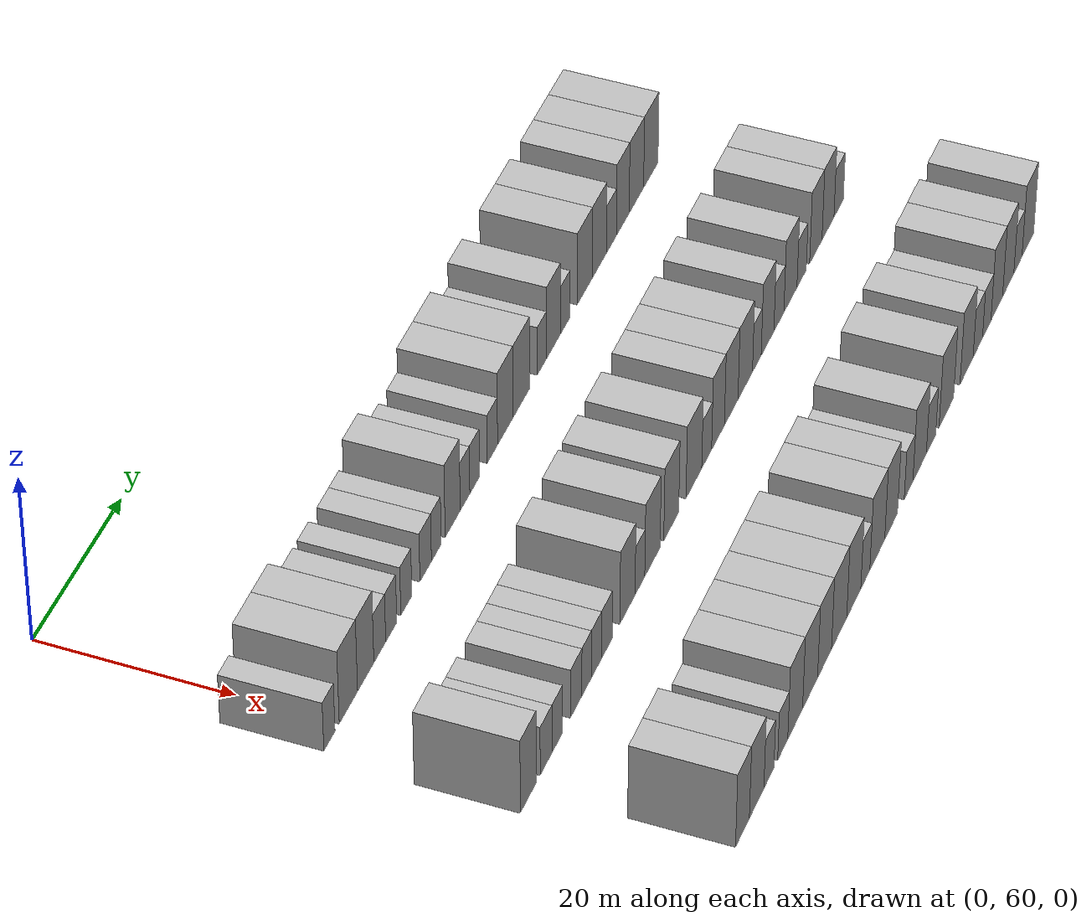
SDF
<sdf version="1.6">
 <world name="default">
  <model name="building_78">
   <static>1</static>
   <pose>25.0000 57.6168 0 0.000000 0.000000 0.000000</pose>
   <link name="link">
    <pose>0 0 3.00 0 0 0</pose>
    <collision name="collision"><geometry><box><size>10.0000 2.6077 6.0000</size></box></geometry></collision>
    <visual name="visual">
     <cast_shadows>0</cast_shadows>
     <geometry><box><size>10.0000 2.6077 6.0000</size></box></geometry>
     <material>
      <script>
       <uri>model://HANNAS_wall/materials/scripts</uri>
       <uri>model://HANNAS_wall/materials/textures</uri>
       <name>vrc/HANNAS_wall</name>
      </script>
     </material>
    </visual>
   </link>
  </model>
  <model name="building_79">
   <static>1</static>
   <pose>25.0000 62.0913 0 0.000000 0.000000 0.000000</pose>
   <link name="link">
    <pose>0 0 4.50 0 0 0</pose>
    <collision name="collision"><geometry><box><size>10.0000 4.3413 9.0000</size></box></geometry></collision>
    <visual name="visual">
     <cast_shadows>0</cast_shadows>
     <geometry><box><size>10.0000 4.3413 9.0000</size></box></geometry>
     <material>
      <script>
       <uri>model://HANNAS_wall/materials/scripts</uri>
       <uri>model://HANNAS_wall/materials/textures</uri>
       <name>vrc/HANNAS_wall</name>
      </script>
     </material>
    </visual>
   </link>
  </model>
  <model name="building_80">
   <static>1</static>
   <pose>25.0000 66.2099 0 0.000000 0.000000 0.000000</pose>
   <link name="link">
    <pose>0 0 4.50 0 0 0</pose>
    <collision name="collision"><geometry><box><size>10.0000 3.8960 9.0000</size></box></geometry></collision>
    <visual name="visual">
     <cast_shadows>0</cast_shadows>
     <geometry><box><size>10.0000 3.8960 9.0000</size></box></geometry>
     <material>
      <script>
       <uri>model://HANNAS_wall/materials/scripts</uri>
       <uri>model://HANNAS_wall/materials/textures</uri>
       <name>vrc/HANNAS_wall</name>
      </script>
     </material>
    </visual>
   </link>
  </model>
  <model name="building_81">
   <static>1</static>
   <pose>25.0000 69.5908 0 0.000000 0.000000 0.000000</pose>
   <link name="link">
    <pose>0 0 3.00 0 0 0</pose>
    <collision name="collision"><geometry><box><size>10.0000 2.8658 6.0000</size></box></geometry></collision>
    <visual name="visual">
     <cast_shadows>0</cast_shadows>
     <geometry><box><size>10.0000 2.8658 6.0000</size></box></geometry>
     <material>
      <script>
       <uri>model://HANNAS_wall/materials/scripts</uri>
       <uri>model://HANNAS_wall/materials/textures</uri>
       <name>vrc/HANNAS_wall</name>
      </script>
     </material>
    </visual>
   </link>
  </model>
  <model name="building_82">
   <static>1</static>
   <pose>25.0000 72.3663 0 0.000000 0.000000 0.000000</pose>
   <link name="link">
    <pose>0 0 3.00 0 0 0</pose>
    <collision name="collision"><geometry><box><size>10.0000 2.6852 6.0000</size></box></geometry></collision>
    <visual name="visual">
     <cast_shadows>0</cast_shadows>
     <geometry><box><size>10.0000 2.6852 6.0000</size></box></geometry>
     <material>
      <script>
       <uri>model://HANNAS_wall/materials/scripts</uri>
       <uri>model://HANNAS_wall/materials/textures</uri>
       <name>vrc/HANNAS_wall</name>
      </script>
     </material>
    </visual>
   </link>
  </model>
  <model name="building_83">
   <static>1</static>
   <pose>25.0000 76.0589 0 0.000000 0.000000 0.000000</pose>
   <link name="link">
    <pose>0 0 3.00 0 0 0</pose>
    <collision name="collision"><geometry><box><size>10.0000 2.7002 6.0000</size></box></geometry></collision>
    <visual name="visual">
     <cast_shadows>0</cast_shadows>
     <geometry><box><size>10.0000 2.7002 6.0000</size></box></geometry>
     <material>
      <script>
       <uri>model://HANNAS_wall/materials/scripts</uri>
       <uri>model://HANNAS_wall/materials/textures</uri>
       <name>vrc/HANNAS_wall</name>
      </script>
     </material>
    </visual>
   </link>
  </model>
  <model name="building_84">
   <static>1</static>
   <pose>25.0000 80.8456 0 0.000000 0.000000 0.000000</pose>
   <link name="link">
    <pose>0 0 3.00 0 0 0</pose>
    <collision name="collision"><geometry><box><size>10.0000 2.8731 6.0000</size></box></geometry></collision>
    <visual name="visual">
     <cast_shadows>0</cast_shadows>
     <geometry><box><size>10.0000 2.8731 6.0000</size></box></geometry>
     <material>
      <script>
       <uri>model://HANNAS_wall/materials/scripts</uri>
       <uri>model://HANNAS_wall/materials/textures</uri>
       <name>vrc/HANNAS_wall</name>
      </script>
     </material>
    </visual>
   </link>
  </model>
  <model name="building_85">
   <static>1</static>
   <pose>25.0000 83.5002 0 0.000000 0.000000 0.000000</pose>
   <link name="link">
    <pose>0 0 3.00 0 0 0</pose>
    <collision name="collision"><geometry><box><size>10.0000 2.4361 6.0000</size></box></geometry></collision>
    <visual name="visual">
     <cast_shadows>0</cast_shadows>
     <geometry><box><size>10.0000 2.4361 6.0000</size></box></geometry>
     <material>
      <script>
       <uri>model://HANNAS_wall/materials/scripts</uri>
       <uri>model://HANNAS_wall/materials/textures</uri>
       <name>vrc/HANNAS_wall</name>
      </script>
     </material>
    </visual>
   </link>
  </model>
  <model name="building_86">
   <static>1</static>
   <pose>25.0000 87.6265 0 0.000000 0.000000 0.000000</pose>
   <link name="link">
    <pose>0 0 4.50 0 0 0</pose>
    <collision name="collision"><geometry><box><size>10.0000 3.8165 9.0000</size></box></geometry></collision>
    <visual name="visual">
     <cast_shadows>0</cast_shadows>
     <geometry><box><size>10.0000 3.8165 9.0000</size></box></geometry>
     <material>
      <script>
       <uri>model://HANNAS_wall/materials/scripts</uri>
       <uri>model://HANNAS_wall/materials/textures</uri>
       <name>vrc/HANNAS_wall</name>
      </script>
     </material>
    </visual>
   </link>
  </model>
  <model name="building_87">
   <static>1</static>
   <pose>25.0000 90.7595 0 0.000000 0.000000 0.000000</pose>
   <link name="link">
    <pose>0 0 3.00 0 0 0</pose>
    <collision name="collision"><geometry><box><size>10.0000 2.4495 6.0000</size></box></geometry></collision>
    <visual name="visual">
     <cast_shadows>0</cast_shadows>
     <geometry><box><size>10.0000 2.4495 6.0000</size></box></geometry>
     <material>
      <script>
       <uri>model://HANNAS_wall/materials/scripts</uri>
       <uri>model://HANNAS_wall/materials/textures</uri>
       <name>vrc/HANNAS_wall</name>
      </script>
     </material>
    </visual>
   </link>
  </model>
  <model name="building_88">
   <static>1</static>
   <pose>25.0000 93.2309 0 0.000000 0.000000 0.000000</pose>
   <link name="link">
    <pose>0 0 3.00 0 0 0</pose>
    <collision name="collision"><geometry><box><size>10.0000 2.4933 6.0000</size></box></geometry></collision>
    <visual name="visual">
     <cast_shadows>0</cast_shadows>
     <geometry><box><size>10.0000 2.4933 6.0000</size></box></geometry>
     <material>
      <script>
       <uri>model://HANNAS_wall/materials/scripts</uri>
       <uri>model://HANNAS_wall/materials/textures</uri>
       <name>vrc/HANNAS_wall</name>
      </script>
     </material>
    </visual>
   </link>
  </model>
  <model name="building_89">
   <static>1</static>
   <pose>25.0000 97.8223 0 0.000000 0.000000 0.000000</pose>
   <link name="link">
    <pose>0 0 3.00 0 0 0</pose>
    <collision name="collision"><geometry><box><size>10.0000 2.6894 6.0000</size></box></geometry></collision>
    <visual name="visual">
     <cast_shadows>0</cast_shadows>
     <geometry><box><size>10.0000 2.6894 6.0000</size></box></geometry>
     <material>
      <script>
       <uri>model://HANNAS_wall/materials/scripts</uri>
       <uri>model://HANNAS_wall/materials/textures</uri>
       <name>vrc/HANNAS_wall</name>
      </script>
     </material>
    </visual>
   </link>
  </model>
  <model name="building_90">
   <static>1</static>
   <pose>25.0000 101.2135 0 0.000000 0.000000 0.000000</pose>
   <link name="link">
    <pose>0 0 4.50 0 0 0</pose>
    <collision name="collision"><geometry><box><size>10.0000 4.0932 9.0000</size></box></geometry></collision>
    <visual name="visual">
     <cast_shadows>0</cast_shadows>
     <geometry><box><size>10.0000 4.0932 9.0000</size></box></geometry>
     <material>
      <script>
       <uri>model://HANNAS_wall/materials/scripts</uri>
       <uri>model://HANNAS_wall/materials/textures</uri>
       <name>vrc/HANNAS_wall</name>
      </script>
     </material>
    </visual>
   </link>
  </model>
  <model name="building_91">
   <static>1</static>
   <pose>25.0000 105.4755 0 0.000000 0.000000 0.000000</pose>
   <link name="link">
    <pose>0 0 4.50 0 0 0</pose>
    <collision name="collision"><geometry><box><size>10.0000 4.4307 9.0000</size></box></geometry></collision>
    <visual name="visual">
     <cast_shadows>0</cast_shadows>
     <geometry><box><size>10.0000 4.4307 9.0000</size></box></geometry>
     <material>
      <script>
       <uri>model://HANNAS_wall/materials/scripts</uri>
       <uri>model://HANNAS_wall/materials/textures</uri>
       <name>vrc/HANNAS_wall</name>
      </script>
     </material>
    </visual>
   </link>
  </model>
  <model name="building_92">
   <static>1</static>
   <pose>25.0000 110.9336 0 0.000000 0.000000 0.000000</pose>
   <link name="link">
    <pose>0 0 3.00 0 0 0</pose>
    <collision name="collision"><geometry><box><size>10.0000 2.4856 6.0000</size></box></geometry></collision>
    <visual name="visual">
     <cast_shadows>0</cast_shadows>
     <geometry><box><size>10.0000 2.4856 6.0000</size></box></geometry>
     <material>
      <script>
       <uri>model://HANNAS_wall/materials/scripts</uri>
       <uri>model://HANNAS_wall/materials/textures</uri>
       <name>vrc/HANNAS_wall</name>
      </script>
     </material>
    </visual>
   </link>
  </model>
  <model name="building_93">
   <static>1</static>
   <pose>25.0000 114.0467 0 0.000000 0.000000 0.000000</pose>
   <link name="link">
    <pose>0 0 4.50 0 0 0</pose>
    <collision name="collision"><geometry><box><size>10.0000 3.7405 9.0000</size></box></geometry></collision>
    <visual name="visual">
     <cast_shadows>0</cast_shadows>
     <geometry><box><size>10.0000 3.7405 9.0000</size></box></geometry>
     <material>
      <script>
       <uri>model://HANNAS_wall/materials/scripts</uri>
       <uri>model://HANNAS_wall/materials/textures</uri>
       <name>vrc/HANNAS_wall</name>
      </script>
     </material>
    </visual>
   </link>
  </model>
  <model name="building_94">
   <static>1</static>
   <pose>25.0000 117.2134 0 0.000000 0.000000 0.000000</pose>
   <link name="link">
    <pose>0 0 3.00 0 0 0</pose>
    <collision name="collision"><geometry><box><size>10.0000 2.5930 6.0000</size></box></geometry></collision>
    <visual name="visual">
     <cast_shadows>0</cast_shadows>
     <geometry><box><size>10.0000 2.5930 6.0000</size></box></geometry>
     <material>
      <script>
       <uri>model://HANNAS_wall/materials/scripts</uri>
       <uri>model://HANNAS_wall/materials/textures</uri>
       <name>vrc/HANNAS_wall</name>
      </script>
     </material>
    </visual>
   </link>
  </model>
  <model name="building_95">
   <static>1</static>
   <pose>25.0000 122.6028 0 0.000000 0.000000 0.000000</pose>
   <link name="link">
    <pose>0 0 4.50 0 0 0</pose>
    <collision name="collision"><geometry><box><size>10.0000 4.1859 9.0000</size></box></geometry></collision>
    <visual name="visual">
     <cast_shadows>0</cast_shadows>
     <geometry><box><size>10.0000 4.1859 9.0000</size></box></geometry>
     <material>
      <script>
       <uri>model://HANNAS_wall/materials/scripts</uri>
       <uri>model://HANNAS_wall/materials/textures</uri>
       <name>vrc/HANNAS_wall</name>
      </script>
     </material>
    </visual>
   </link>
  </model>
  <model name="building_96">
   <static>1</static>
   <pose>25.0000 126.6774 0 0.000000 0.000000 0.000000</pose>
   <link name="link">
    <pose>0 0 4.50 0 0 0</pose>
    <collision name="collision"><geometry><box><size>10.0000 3.9634 9.0000</size></box></geometry></collision>
    <visual name="visual">
     <cast_shadows>0</cast_shadows>
     <geometry><box><size>10.0000 3.9634 9.0000</size></box></geometry>
     <material>
      <script>
       <uri>model://HANNAS_wall/materials/scripts</uri>
       <uri>model://HANNAS_wall/materials/textures</uri>
       <name>vrc/HANNAS_wall</name>
      </script>
     </material>
    </visual>
   </link>
  </model>
  <model name="building_97">
   <static>1</static>
   <pose>25.0000 130.0631 0 0.000000 0.000000 0.000000</pose>
   <link name="link">
    <pose>0 0 3.00 0 0 0</pose>
    <collision name="collision"><geometry><box><size>10.0000 2.8080 6.0000</size></box></geometry></collision>
    <visual name="visual">
     <cast_shadows>0</cast_shadows>
     <geometry><box><size>10.0000 2.8080 6.0000</size></box></geometry>
     <material>
      <script>
       <uri>model://HANNAS_wall/materials/scripts</uri>
       <uri>model://HANNAS_wall/materials/textures</uri>
       <name>vrc/HANNAS_wall</name>
      </script>
     </material>
    </visual>
   </link>
  </model>
  <model name="building_98">
   <static>1</static>
   <pose>25.0000 133.2818 0 0.000000 0.000000 0.000000</pose>
   <link name="link">
    <pose>0 0 4.50 0 0 0</pose>
    <collision name="collision"><geometry><box><size>10.0000 3.6292 9.0000</size></box></geometry></collision>
    <visual name="visual">
     <cast_shadows>0</cast_shadows>
     <geometry><box><size>10.0000 3.6292 9.0000</size></box></geometry>
     <material>
      <script>
       <uri>model://HANNAS_wall/materials/scripts</uri>
       <uri>model://HANNAS_wall/materials/textures</uri>
       <name>vrc/HANNAS_wall</name>
      </script>
     </material>
    </visual>
   </link>
  </model>
  <model name="building_99">
   <static>1</static>
   <pose>25.0000 137.1671 0 0.000000 0.000000 0.000000</pose>
   <link name="link">
    <pose>0 0 4.50 0 0 0</pose>
    <collision name="collision"><geometry><box><size>10.0000 4.1414 9.0000</size></box></geometry></collision>
    <visual name="visual">
     <cast_shadows>0</cast_shadows>
     <geometry><box><size>10.0000 4.1414 9.0000</size></box></geometry>
     <material>
      <script>
       <uri>model://HANNAS_wall/materials/scripts</uri>
       <uri>model://HANNAS_wall/materials/textures</uri>
       <name>vrc/HANNAS_wall</name>
      </script>
     </material>
    </visual>
   </link>
  </model>
  <model name="building_100">
   <static>1</static>
   <pose>25.0000 141.3183 0 0.000000 0.000000 0.000000</pose>
   <link name="link">
    <pose>0 0 4.50 0 0 0</pose>
    <collision name="collision"><geometry><box><size>10.0000 4.1610 9.0000</size></box></geometry></collision>
    <visual name="visual">
     <cast_shadows>0</cast_shadows>
     <geometry><box><size>10.0000 4.1610 9.0000</size></box></geometry>
     <material>
      <script>
       <uri>model://HANNAS_wall/materials/scripts</uri>
       <uri>model://HANNAS_wall/materials/textures</uri>
       <name>vrc/HANNAS_wall</name>
      </script>
     </material>
    </visual>
   </link>
  </model>
  <model name="building_187">
   <static>1</static>
   <pose>44.0000 57.2955 0 0.000000 0.000000 0.000000</pose>
   <link name="link">
    <pose>0 0 4.50 0 0 0</pose>
    <collision name="collision"><geometry><box><size>10.0000 3.9192 9.0000</size></box></geometry></collision>
    <visual name="visual">
     <cast_shadows>0</cast_shadows>
     <geometry><box><size>10.0000 3.9192 9.0000</size></box></geometry>
     <material>
      <script>
       <uri>model://HANNAS_wall/materials/scripts</uri>
       <uri>model://HANNAS_wall/materials/textures</uri>
       <name>vrc/HANNAS_wall</name>
      </script>
     </material>
    </visual>
   </link>
  </model>
  <model name="building_188">
   <static>1</static>
   <pose>44.0000 61.7269 0 0.000000 0.000000 0.000000</pose>
   <link name="link">
    <pose>0 0 3.00 0 0 0</pose>
    <collision name="collision"><geometry><box><size>10.0000 2.9437 6.0000</size></box></geometry></collision>
    <visual name="visual">
     <cast_shadows>0</cast_shadows>
     <geometry><box><size>10.0000 2.9437 6.0000</size></box></geometry>
     <material>
      <script>
       <uri>model://HANNAS_wall/materials/scripts</uri>
       <uri>model://HANNAS_wall/materials/textures</uri>
       <name>vrc/HANNAS_wall</name>
      </script>
     </material>
    </visual>
   </link>
  </model>
  <model name="building_189">
   <static>1</static>
   <pose>44.0000 64.5300 0 0.000000 0.000000 0.000000</pose>
   <link name="link">
    <pose>0 0 3.00 0 0 0</pose>
    <collision name="collision"><geometry><box><size>10.0000 2.6625 6.0000</size></box></geometry></collision>
    <visual name="visual">
     <cast_shadows>0</cast_shadows>
     <geometry><box><size>10.0000 2.6625 6.0000</size></box></geometry>
     <material>
      <script>
       <uri>model://HANNAS_wall/materials/scripts</uri>
       <uri>model://HANNAS_wall/materials/textures</uri>
       <name>vrc/HANNAS_wall</name>
      </script>
     </material>
    </visual>
   </link>
  </model>
  <model name="building_190">
   <static>1</static>
   <pose>44.0000 69.3159 0 0.000000 0.000000 0.000000</pose>
   <link name="link">
    <pose>0 0 3.00 0 0 0</pose>
    <collision name="collision"><geometry><box><size>10.0000 2.9095 6.0000</size></box></geometry></collision>
    <visual name="visual">
     <cast_shadows>0</cast_shadows>
     <geometry><box><size>10.0000 2.9095 6.0000</size></box></geometry>
     <material>
      <script>
       <uri>model://HANNAS_wall/materials/scripts</uri>
       <uri>model://HANNAS_wall/materials/textures</uri>
       <name>vrc/HANNAS_wall</name>
      </script>
     </material>
    </visual>
   </link>
  </model>
  <model name="building_191">
   <static>1</static>
   <pose>44.0000 71.9890 0 0.000000 0.000000 0.000000</pose>
   <link name="link">
    <pose>0 0 3.00 0 0 0</pose>
    <collision name="collision"><geometry><box><size>10.0000 2.4366 6.0000</size></box></geometry></collision>
    <visual name="visual">
     <cast_shadows>0</cast_shadows>
     <geometry><box><size>10.0000 2.4366 6.0000</size></box></geometry>
     <material>
      <script>
       <uri>model://HANNAS_wall/materials/scripts</uri>
       <uri>model://HANNAS_wall/materials/textures</uri>
       <name>vrc/HANNAS_wall</name>
      </script>
     </material>
    </visual>
   </link>
  </model>
  <model name="building_192">
   <static>1</static>
   <pose>44.0000 74.5039 0 0.000000 0.000000 0.000000</pose>
   <link name="link">
    <pose>0 0 3.00 0 0 0</pose>
    <collision name="collision"><geometry><box><size>10.0000 2.5933 6.0000</size></box></geometry></collision>
    <visual name="visual">
     <cast_shadows>0</cast_shadows>
     <geometry><box><size>10.0000 2.5933 6.0000</size></box></geometry>
     <material>
      <script>
       <uri>model://HANNAS_wall/materials/scripts</uri>
       <uri>model://HANNAS_wall/materials/textures</uri>
       <name>vrc/HANNAS_wall</name>
      </script>
     </material>
    </visual>
   </link>
  </model>
  <model name="building_193">
   <static>1</static>
   <pose>44.0000 77.2271 0 0.000000 0.000000 0.000000</pose>
   <link name="link">
    <pose>0 0 3.00 0 0 0</pose>
    <collision name="collision"><geometry><box><size>10.0000 2.8531 6.0000</size></box></geometry></collision>
    <visual name="visual">
     <cast_shadows>0</cast_shadows>
     <geometry><box><size>10.0000 2.8531 6.0000</size></box></geometry>
     <material>
      <script>
       <uri>model://HANNAS_wall/materials/scripts</uri>
       <uri>model://HANNAS_wall/materials/textures</uri>
       <name>vrc/HANNAS_wall</name>
      </script>
     </material>
    </visual>
   </link>
  </model>
  <model name="building_194">
   <static>1</static>
   <pose>44.0000 82.6647 0 0.000000 0.000000 0.000000</pose>
   <link name="link">
    <pose>0 0 4.50 0 0 0</pose>
    <collision name="collision"><geometry><box><size>10.0000 4.0220 9.0000</size></box></geometry></collision>
    <visual name="visual">
     <cast_shadows>0</cast_shadows>
     <geometry><box><size>10.0000 4.0220 9.0000</size></box></geometry>
     <material>
      <script>
       <uri>model://HANNAS_wall/materials/scripts</uri>
       <uri>model://HANNAS_wall/materials/textures</uri>
       <name>vrc/HANNAS_wall</name>
      </script>
     </material>
    </visual>
   </link>
  </model>
  <model name="building_195">
   <static>1</static>
   <pose>44.0000 85.9677 0 0.000000 0.000000 0.000000</pose>
   <link name="link">
    <pose>0 0 3.00 0 0 0</pose>
    <collision name="collision"><geometry><box><size>10.0000 2.5840 6.0000</size></box></geometry></collision>
    <visual name="visual">
     <cast_shadows>0</cast_shadows>
     <geometry><box><size>10.0000 2.5840 6.0000</size></box></geometry>
     <material>
      <script>
       <uri>model://HANNAS_wall/materials/scripts</uri>
       <uri>model://HANNAS_wall/materials/textures</uri>
       <name>vrc/HANNAS_wall</name>
      </script>
     </material>
    </visual>
   </link>
  </model>
  <model name="building_196">
   <static>1</static>
   <pose>44.0000 89.3220 0 0.000000 0.000000 0.000000</pose>
   <link name="link">
    <pose>0 0 4.50 0 0 0</pose>
    <collision name="collision"><geometry><box><size>10.0000 4.1246 9.0000</size></box></geometry></collision>
    <visual name="visual">
     <cast_shadows>0</cast_shadows>
     <geometry><box><size>10.0000 4.1246 9.0000</size></box></geometry>
     <material>
      <script>
       <uri>model://HANNAS_wall/materials/scripts</uri>
       <uri>model://HANNAS_wall/materials/textures</uri>
       <name>vrc/HANNAS_wall</name>
      </script>
     </material>
    </visual>
   </link>
  </model>
  <model name="building_197">
   <static>1</static>
   <pose>44.0000 94.4240 0 0.000000 0.000000 0.000000</pose>
   <link name="link">
    <pose>0 0 4.50 0 0 0</pose>
    <collision name="collision"><geometry><box><size>10.0000 4.0794 9.0000</size></box></geometry></collision>
    <visual name="visual">
     <cast_shadows>0</cast_shadows>
     <geometry><box><size>10.0000 4.0794 9.0000</size></box></geometry>
     <material>
      <script>
       <uri>model://HANNAS_wall/materials/scripts</uri>
       <uri>model://HANNAS_wall/materials/textures</uri>
       <name>vrc/HANNAS_wall</name>
      </script>
     </material>
    </visual>
   </link>
  </model>
  <model name="building_198">
   <static>1</static>
   <pose>44.0000 100.6492 0 0.000000 0.000000 0.000000</pose>
   <link name="link">
    <pose>0 0 4.50 0 0 0</pose>
    <collision name="collision"><geometry><box><size>10.0000 4.3709 9.0000</size></box></geometry></collision>
    <visual name="visual">
     <cast_shadows>0</cast_shadows>
     <geometry><box><size>10.0000 4.3709 9.0000</size></box></geometry>
     <material>
      <script>
       <uri>model://HANNAS_wall/materials/scripts</uri>
       <uri>model://HANNAS_wall/materials/textures</uri>
       <name>vrc/HANNAS_wall</name>
      </script>
     </material>
    </visual>
   </link>
  </model>
  <model name="building_199">
   <static>1</static>
   <pose>44.0000 104.2167 0 0.000000 0.000000 0.000000</pose>
   <link name="link">
    <pose>0 0 3.00 0 0 0</pose>
    <collision name="collision"><geometry><box><size>10.0000 2.7642 6.0000</size></box></geometry></collision>
    <visual name="visual">
     <cast_shadows>0</cast_shadows>
     <geometry><box><size>10.0000 2.7642 6.0000</size></box></geometry>
     <material>
      <script>
       <uri>model://HANNAS_wall/materials/scripts</uri>
       <uri>model://HANNAS_wall/materials/textures</uri>
       <name>vrc/HANNAS_wall</name>
      </script>
     </material>
    </visual>
   </link>
  </model>
  <model name="building_200">
   <static>1</static>
   <pose>44.0000 107.3999 0 0.000000 0.000000 0.000000</pose>
   <link name="link">
    <pose>0 0 4.50 0 0 0</pose>
    <collision name="collision"><geometry><box><size>10.0000 3.6023 9.0000</size></box></geometry></collision>
    <visual name="visual">
     <cast_shadows>0</cast_shadows>
     <geometry><box><size>10.0000 3.6023 9.0000</size></box></geometry>
     <material>
      <script>
       <uri>model://HANNAS_wall/materials/scripts</uri>
       <uri>model://HANNAS_wall/materials/textures</uri>
       <name>vrc/HANNAS_wall</name>
      </script>
     </material>
    </visual>
   </link>
  </model>
  <model name="building_201">
   <static>1</static>
   <pose>44.0000 111.1440 0 0.000000 0.000000 0.000000</pose>
   <link name="link">
    <pose>0 0 4.50 0 0 0</pose>
    <collision name="collision"><geometry><box><size>10.0000 3.8859 9.0000</size></box></geometry></collision>
    <visual name="visual">
     <cast_shadows>0</cast_shadows>
     <geometry><box><size>10.0000 3.8859 9.0000</size></box></geometry>
     <material>
      <script>
       <uri>model://HANNAS_wall/materials/scripts</uri>
       <uri>model://HANNAS_wall/materials/textures</uri>
       <name>vrc/HANNAS_wall</name>
      </script>
     </material>
    </visual>
   </link>
  </model>
  <model name="building_202">
   <static>1</static>
   <pose>44.0000 115.1730 0 0.000000 0.000000 0.000000</pose>
   <link name="link">
    <pose>0 0 4.50 0 0 0</pose>
    <collision name="collision"><geometry><box><size>10.0000 4.1720 9.0000</size></box></geometry></collision>
    <visual name="visual">
     <cast_shadows>0</cast_shadows>
     <geometry><box><size>10.0000 4.1720 9.0000</size></box></geometry>
     <material>
      <script>
       <uri>model://HANNAS_wall/materials/scripts</uri>
       <uri>model://HANNAS_wall/materials/textures</uri>
       <name>vrc/HANNAS_wall</name>
      </script>
     </material>
    </visual>
   </link>
  </model>
  <model name="building_203">
   <static>1</static>
   <pose>44.0000 118.5215 0 0.000000 0.000000 0.000000</pose>
   <link name="link">
    <pose>0 0 3.00 0 0 0</pose>
    <collision name="collision"><geometry><box><size>10.0000 2.5250 6.0000</size></box></geometry></collision>
    <visual name="visual">
     <cast_shadows>0</cast_shadows>
     <geometry><box><size>10.0000 2.5250 6.0000</size></box></geometry>
     <material>
      <script>
       <uri>model://HANNAS_wall/materials/scripts</uri>
       <uri>model://HANNAS_wall/materials/textures</uri>
       <name>vrc/HANNAS_wall</name>
      </script>
     </material>
    </visual>
   </link>
  </model>
  <model name="building_204">
   <static>1</static>
   <pose>44.0000 121.6447 0 0.000000 0.000000 0.000000</pose>
   <link name="link">
    <pose>0 0 4.50 0 0 0</pose>
    <collision name="collision"><geometry><box><size>10.0000 3.7213 9.0000</size></box></geometry></collision>
    <visual name="visual">
     <cast_shadows>0</cast_shadows>
     <geometry><box><size>10.0000 3.7213 9.0000</size></box></geometry>
     <material>
      <script>
       <uri>model://HANNAS_wall/materials/scripts</uri>
       <uri>model://HANNAS_wall/materials/textures</uri>
       <name>vrc/HANNAS_wall</name>
      </script>
     </material>
    </visual>
   </link>
  </model>
  <model name="building_205">
   <static>1</static>
   <pose>44.0000 124.9823 0 0.000000 0.000000 0.000000</pose>
   <link name="link">
    <pose>0 0 3.00 0 0 0</pose>
    <collision name="collision"><geometry><box><size>10.0000 2.9539 6.0000</size></box></geometry></collision>
    <visual name="visual">
     <cast_shadows>0</cast_shadows>
     <geometry><box><size>10.0000 2.9539 6.0000</size></box></geometry>
     <material>
      <script>
       <uri>model://HANNAS_wall/materials/scripts</uri>
       <uri>model://HANNAS_wall/materials/textures</uri>
       <name>vrc/HANNAS_wall</name>
      </script>
     </material>
    </visual>
   </link>
  </model>
  <model name="building_206">
   <static>1</static>
   <pose>44.0000 128.4001 0 0.000000 0.000000 0.000000</pose>
   <link name="link">
    <pose>0 0 4.50 0 0 0</pose>
    <collision name="collision"><geometry><box><size>10.0000 3.8818 9.0000</size></box></geometry></collision>
    <visual name="visual">
     <cast_shadows>0</cast_shadows>
     <geometry><box><size>10.0000 3.8818 9.0000</size></box></geometry>
     <material>
      <script>
       <uri>model://HANNAS_wall/materials/scripts</uri>
       <uri>model://HANNAS_wall/materials/textures</uri>
       <name>vrc/HANNAS_wall</name>
      </script>
     </material>
    </visual>
   </link>
  </model>
  <model name="building_207">
   <static>1</static>
   <pose>44.0000 131.7375 0 0.000000 0.000000 0.000000</pose>
   <link name="link">
    <pose>0 0 3.00 0 0 0</pose>
    <collision name="collision"><geometry><box><size>10.0000 2.7929 6.0000</size></box></geometry></collision>
    <visual name="visual">
     <cast_shadows>0</cast_shadows>
     <geometry><box><size>10.0000 2.7929 6.0000</size></box></geometry>
     <material>
      <script>
       <uri>model://HANNAS_wall/materials/scripts</uri>
       <uri>model://HANNAS_wall/materials/textures</uri>
       <name>vrc/HANNAS_wall</name>
      </script>
     </material>
    </visual>
   </link>
  </model>
  <model name="building_208">
   <static>1</static>
   <pose>44.0000 136.0123 0 0.000000 0.000000 0.000000</pose>
   <link name="link">
    <pose>0 0 4.50 0 0 0</pose>
    <collision name="collision"><geometry><box><size>10.0000 3.7566 9.0000</size></box></geometry></collision>
    <visual name="visual">
     <cast_shadows>0</cast_shadows>
     <geometry><box><size>10.0000 3.7566 9.0000</size></box></geometry>
     <material>
      <script>
       <uri>model://HANNAS_wall/materials/scripts</uri>
       <uri>model://HANNAS_wall/materials/textures</uri>
       <name>vrc/HANNAS_wall</name>
      </script>
     </material>
    </visual>
   </link>
  </model>
  <model name="building_209">
   <static>1</static>
   <pose>44.0000 139.7263 0 0.000000 0.000000 0.000000</pose>
   <link name="link">
    <pose>0 0 4.50 0 0 0</pose>
    <collision name="collision"><geometry><box><size>10.0000 3.6715 9.0000</size></box></geometry></collision>
    <visual name="visual">
     <cast_shadows>0</cast_shadows>
     <geometry><box><size>10.0000 3.6715 9.0000</size></box></geometry>
     <material>
      <script>
       <uri>model://HANNAS_wall/materials/scripts</uri>
       <uri>model://HANNAS_wall/materials/textures</uri>
       <name>vrc/HANNAS_wall</name>
      </script>
     </material>
    </visual>
   </link>
  </model>
  <model name="building_210">
   <static>1</static>
   <pose>44.0000 143.0093 0 0.000000 0.000000 0.000000</pose>
   <link name="link">
    <pose>0 0 3.00 0 0 0</pose>
    <collision name="collision"><geometry><box><size>10.0000 2.8945 6.0000</size></box></geometry></collision>
    <visual name="visual">
     <cast_shadows>0</cast_shadows>
     <geometry><box><size>10.0000 2.8945 6.0000</size></box></geometry>
     <material>
      <script>
       <uri>model://HANNAS_wall/materials/scripts</uri>
       <uri>model://HANNAS_wall/materials/textures</uri>
       <name>vrc/HANNAS_wall</name>
      </script>
     </material>
    </visual>
   </link>
  </model>
  <model name="building_304">
   <static>1</static>
   <pose>63.0000 59.9454 0 0.000000 0.000000 0.000000</pose>
   <link name="link">
    <pose>0 0 4.50 0 0 0</pose>
    <collision name="collision"><geometry><box><size>10.0000 3.6514 9.0000</size></box></geometry></collision>
    <visual name="visual">
     <cast_shadows>0</cast_shadows>
     <geometry><box><size>10.0000 3.6514 9.0000</size></box></geometry>
     <material>
      <script>
       <uri>model://HANNAS_wall/materials/scripts</uri>
       <uri>model://HANNAS_wall/materials/textures</uri>
       <name>vrc/HANNAS_wall</name>
      </script>
     </material>
    </visual>
   </link>
  </model>
  <model name="building_305">
   <static>1</static>
   <pose>63.0000 63.7202 0 0.000000 0.000000 0.000000</pose>
   <link name="link">
    <pose>0 0 4.50 0 0 0</pose>
    <collision name="collision"><geometry><box><size>10.0000 3.8983 9.0000</size></box></geometry></collision>
    <visual name="visual">
     <cast_shadows>0</cast_shadows>
     <geometry><box><size>10.0000 3.8983 9.0000</size></box></geometry>
     <material>
      <script>
       <uri>model://HANNAS_wall/materials/scripts</uri>
       <uri>model://HANNAS_wall/materials/textures</uri>
       <name>vrc/HANNAS_wall</name>
      </script>
     </material>
    </visual>
   </link>
  </model>
  <model name="building_306">
   <static>1</static>
   <pose>63.0000 67.0281 0 0.000000 0.000000 0.000000</pose>
   <link name="link">
    <pose>0 0 3.00 0 0 0</pose>
    <collision name="collision"><geometry><box><size>10.0000 2.7175 6.0000</size></box></geometry></collision>
    <visual name="visual">
     <cast_shadows>0</cast_shadows>
     <geometry><box><size>10.0000 2.7175 6.0000</size></box></geometry>
     <material>
      <script>
       <uri>model://HANNAS_wall/materials/scripts</uri>
       <uri>model://HANNAS_wall/materials/textures</uri>
       <name>vrc/HANNAS_wall</name>
      </script>
     </material>
    </visual>
   </link>
  </model>
  <model name="building_307">
   <static>1</static>
   <pose>63.0000 70.7655 0 0.000000 0.000000 0.000000</pose>
   <link name="link">
    <pose>0 0 3.00 0 0 0</pose>
    <collision name="collision"><geometry><box><size>10.0000 2.7573 6.0000</size></box></geometry></collision>
    <visual name="visual">
     <cast_shadows>0</cast_shadows>
     <geometry><box><size>10.0000 2.7573 6.0000</size></box></geometry>
     <material>
      <script>
       <uri>model://HANNAS_wall/materials/scripts</uri>
       <uri>model://HANNAS_wall/materials/textures</uri>
       <name>vrc/HANNAS_wall</name>
      </script>
     </material>
    </visual>
   </link>
  </model>
  <model name="building_308">
   <static>1</static>
   <pose>63.0000 74.1871 0 0.000000 0.000000 0.000000</pose>
   <link name="link">
    <pose>0 0 4.50 0 0 0</pose>
    <collision name="collision"><geometry><box><size>10.0000 4.0858 9.0000</size></box></geometry></collision>
    <visual name="visual">
     <cast_shadows>0</cast_shadows>
     <geometry><box><size>10.0000 4.0858 9.0000</size></box></geometry>
     <material>
      <script>
       <uri>model://HANNAS_wall/materials/scripts</uri>
       <uri>model://HANNAS_wall/materials/textures</uri>
       <name>vrc/HANNAS_wall</name>
      </script>
     </material>
    </visual>
   </link>
  </model>
  <model name="building_309">
   <static>1</static>
   <pose>63.0000 78.3094 0 0.000000 0.000000 0.000000</pose>
   <link name="link">
    <pose>0 0 4.50 0 0 0</pose>
    <collision name="collision"><geometry><box><size>10.0000 4.1589 9.0000</size></box></geometry></collision>
    <visual name="visual">
     <cast_shadows>0</cast_shadows>
     <geometry><box><size>10.0000 4.1589 9.0000</size></box></geometry>
     <material>
      <script>
       <uri>model://HANNAS_wall/materials/scripts</uri>
       <uri>model://HANNAS_wall/materials/textures</uri>
       <name>vrc/HANNAS_wall</name>
      </script>
     </material>
    </visual>
   </link>
  </model>
  <model name="building_310">
   <static>1</static>
   <pose>63.0000 82.3466 0 0.000000 0.000000 0.000000</pose>
   <link name="link">
    <pose>0 0 4.50 0 0 0</pose>
    <collision name="collision"><geometry><box><size>10.0000 3.9154 9.0000</size></box></geometry></collision>
    <visual name="visual">
     <cast_shadows>0</cast_shadows>
     <geometry><box><size>10.0000 3.9154 9.0000</size></box></geometry>
     <material>
      <script>
       <uri>model://HANNAS_wall/materials/scripts</uri>
       <uri>model://HANNAS_wall/materials/textures</uri>
       <name>vrc/HANNAS_wall</name>
      </script>
     </material>
    </visual>
   </link>
  </model>
  <model name="building_311">
   <static>1</static>
   <pose>63.0000 86.4650 0 0.000000 0.000000 0.000000</pose>
   <link name="link">
    <pose>0 0 4.50 0 0 0</pose>
    <collision name="collision"><geometry><box><size>10.0000 4.3214 9.0000</size></box></geometry></collision>
    <visual name="visual">
     <cast_shadows>0</cast_shadows>
     <geometry><box><size>10.0000 4.3214 9.0000</size></box></geometry>
     <material>
      <script>
       <uri>model://HANNAS_wall/materials/scripts</uri>
       <uri>model://HANNAS_wall/materials/textures</uri>
       <name>vrc/HANNAS_wall</name>
      </script>
     </material>
    </visual>
   </link>
  </model>
  <model name="building_312">
   <static>1</static>
   <pose>63.0000 90.6575 0 0.000000 0.000000 0.000000</pose>
   <link name="link">
    <pose>0 0 4.50 0 0 0</pose>
    <collision name="collision"><geometry><box><size>10.0000 4.0635 9.0000</size></box></geometry></collision>
    <visual name="visual">
     <cast_shadows>0</cast_shadows>
     <geometry><box><size>10.0000 4.0635 9.0000</size></box></geometry>
     <material>
      <script>
       <uri>model://HANNAS_wall/materials/scripts</uri>
       <uri>model://HANNAS_wall/materials/textures</uri>
       <name>vrc/HANNAS_wall</name>
      </script>
     </material>
    </visual>
   </link>
  </model>
  <model name="building_313">
   <static>1</static>
   <pose>63.0000 94.0005 0 0.000000 0.000000 0.000000</pose>
   <link name="link">
    <pose>0 0 3.00 0 0 0</pose>
    <collision name="collision"><geometry><box><size>10.0000 2.6225 6.0000</size></box></geometry></collision>
    <visual name="visual">
     <cast_shadows>0</cast_shadows>
     <geometry><box><size>10.0000 2.6225 6.0000</size></box></geometry>
     <material>
      <script>
       <uri>model://HANNAS_wall/materials/scripts</uri>
       <uri>model://HANNAS_wall/materials/textures</uri>
       <name>vrc/HANNAS_wall</name>
      </script>
     </material>
    </visual>
   </link>
  </model>
  <model name="building_314">
   <static>1</static>
   <pose>63.0000 97.4965 0 0.000000 0.000000 0.000000</pose>
   <link name="link">
    <pose>0 0 4.50 0 0 0</pose>
    <collision name="collision"><geometry><box><size>10.0000 4.3694 9.0000</size></box></geometry></collision>
    <visual name="visual">
     <cast_shadows>0</cast_shadows>
     <geometry><box><size>10.0000 4.3694 9.0000</size></box></geometry>
     <material>
      <script>
       <uri>model://HANNAS_wall/materials/scripts</uri>
       <uri>model://HANNAS_wall/materials/textures</uri>
       <name>vrc/HANNAS_wall</name>
      </script>
     </material>
    </visual>
   </link>
  </model>
  <model name="building_315">
   <static>1</static>
   <pose>63.0000 101.5729 0 0.000000 0.000000 0.000000</pose>
   <link name="link">
    <pose>0 0 4.50 0 0 0</pose>
    <collision name="collision"><geometry><box><size>10.0000 3.7836 9.0000</size></box></geometry></collision>
    <visual name="visual">
     <cast_shadows>0</cast_shadows>
     <geometry><box><size>10.0000 3.7836 9.0000</size></box></geometry>
     <material>
      <script>
       <uri>model://HANNAS_wall/materials/scripts</uri>
       <uri>model://HANNAS_wall/materials/textures</uri>
       <name>vrc/HANNAS_wall</name>
      </script>
     </material>
    </visual>
   </link>
  </model>
  <model name="building_316">
   <static>1</static>
   <pose>63.0000 106.7675 0 0.000000 0.000000 0.000000</pose>
   <link name="link">
    <pose>0 0 3.00 0 0 0</pose>
    <collision name="collision"><geometry><box><size>10.0000 2.6056 6.0000</size></box></geometry></collision>
    <visual name="visual">
     <cast_shadows>0</cast_shadows>
     <geometry><box><size>10.0000 2.6056 6.0000</size></box></geometry>
     <material>
      <script>
       <uri>model://HANNAS_wall/materials/scripts</uri>
       <uri>model://HANNAS_wall/materials/textures</uri>
       <name>vrc/HANNAS_wall</name>
      </script>
     </material>
    </visual>
   </link>
  </model>
  <model name="building_317">
   <static>1</static>
   <pose>63.0000 110.1076 0 0.000000 0.000000 0.000000</pose>
   <link name="link">
    <pose>0 0 4.50 0 0 0</pose>
    <collision name="collision"><geometry><box><size>10.0000 4.0745 9.0000</size></box></geometry></collision>
    <visual name="visual">
     <cast_shadows>0</cast_shadows>
     <geometry><box><size>10.0000 4.0745 9.0000</size></box></geometry>
     <material>
      <script>
       <uri>model://HANNAS_wall/materials/scripts</uri>
       <uri>model://HANNAS_wall/materials/textures</uri>
       <name>vrc/HANNAS_wall</name>
      </script>
     </material>
    </visual>
   </link>
  </model>
  <model name="building_318">
   <static>1</static>
   <pose>63.0000 113.5809 0 0.000000 0.000000 0.000000</pose>
   <link name="link">
    <pose>0 0 3.00 0 0 0</pose>
    <collision name="collision"><geometry><box><size>10.0000 2.8721 6.0000</size></box></geometry></collision>
    <visual name="visual">
     <cast_shadows>0</cast_shadows>
     <geometry><box><size>10.0000 2.8721 6.0000</size></box></geometry>
     <material>
      <script>
       <uri>model://HANNAS_wall/materials/scripts</uri>
       <uri>model://HANNAS_wall/materials/textures</uri>
       <name>vrc/HANNAS_wall</name>
      </script>
     </material>
    </visual>
   </link>
  </model>
  <model name="building_319">
   <static>1</static>
   <pose>63.0000 118.2663 0 0.000000 0.000000 0.000000</pose>
   <link name="link">
    <pose>0 0 4.50 0 0 0</pose>
    <collision name="collision"><geometry><box><size>10.0000 4.4986 9.0000</size></box></geometry></collision>
    <visual name="visual">
     <cast_shadows>0</cast_shadows>
     <geometry><box><size>10.0000 4.4986 9.0000</size></box></geometry>
     <material>
      <script>
       <uri>model://HANNAS_wall/materials/scripts</uri>
       <uri>model://HANNAS_wall/materials/textures</uri>
       <name>vrc/HANNAS_wall</name>
      </script>
     </material>
    </visual>
   </link>
  </model>
  <model name="building_320">
   <static>1</static>
   <pose>63.0000 124.5739 0 0.000000 0.000000 0.000000</pose>
   <link name="link">
    <pose>0 0 4.50 0 0 0</pose>
    <collision name="collision"><geometry><box><size>10.0000 4.1167 9.0000</size></box></geometry></collision>
    <visual name="visual">
     <cast_shadows>0</cast_shadows>
     <geometry><box><size>10.0000 4.1167 9.0000</size></box></geometry>
     <material>
      <script>
       <uri>model://HANNAS_wall/materials/scripts</uri>
       <uri>model://HANNAS_wall/materials/textures</uri>
       <name>vrc/HANNAS_wall</name>
      </script>
     </material>
    </visual>
   </link>
  </model>
  <model name="building_321">
   <static>1</static>
   <pose>63.0000 128.1238 0 0.000000 0.000000 0.000000</pose>
   <link name="link">
    <pose>0 0 3.00 0 0 0</pose>
    <collision name="collision"><geometry><box><size>10.0000 2.9831 6.0000</size></box></geometry></collision>
    <visual name="visual">
     <cast_shadows>0</cast_shadows>
     <geometry><box><size>10.0000 2.9831 6.0000</size></box></geometry>
     <material>
      <script>
       <uri>model://HANNAS_wall/materials/scripts</uri>
       <uri>model://HANNAS_wall/materials/textures</uri>
       <name>vrc/HANNAS_wall</name>
      </script>
     </material>
    </visual>
   </link>
  </model>
  <model name="building_322">
   <static>1</static>
   <pose>63.0000 130.9545 0 0.000000 0.000000 0.000000</pose>
   <link name="link">
    <pose>0 0 3.00 0 0 0</pose>
    <collision name="collision"><geometry><box><size>10.0000 2.6783 6.0000</size></box></geometry></collision>
    <visual name="visual">
     <cast_shadows>0</cast_shadows>
     <geometry><box><size>10.0000 2.6783 6.0000</size></box></geometry>
     <material>
      <script>
       <uri>model://HANNAS_wall/materials/scripts</uri>
       <uri>model://HANNAS_wall/materials/textures</uri>
       <name>vrc/HANNAS_wall</name>
      </script>
     </material>
    </visual>
   </link>
  </model>
  <model name="building_323">
   <static>1</static>
   <pose>63.0000 134.1691 0 0.000000 0.000000 0.000000</pose>
   <link name="link">
    <pose>0 0 4.50 0 0 0</pose>
    <collision name="collision"><geometry><box><size>10.0000 3.7509 9.0000</size></box></geometry></collision>
    <visual name="visual">
     <cast_shadows>0</cast_shadows>
     <geometry><box><size>10.0000 3.7509 9.0000</size></box></geometry>
     <material>
      <script>
       <uri>model://HANNAS_wall/materials/scripts</uri>
       <uri>model://HANNAS_wall/materials/textures</uri>
       <name>vrc/HANNAS_wall</name>
      </script>
     </material>
    </visual>
   </link>
  </model>
  <model name="building_324">
   <static>1</static>
   <pose>63.0000 137.8802 0 0.000000 0.000000 0.000000</pose>
   <link name="link">
    <pose>0 0 4.50 0 0 0</pose>
    <collision name="collision"><geometry><box><size>10.0000 3.6712 9.0000</size></box></geometry></collision>
    <visual name="visual">
     <cast_shadows>0</cast_shadows>
     <geometry><box><size>10.0000 3.6712 9.0000</size></box></geometry>
     <material>
      <script>
       <uri>model://HANNAS_wall/materials/scripts</uri>
       <uri>model://HANNAS_wall/materials/textures</uri>
       <name>vrc/HANNAS_wall</name>
      </script>
     </material>
    </visual>
   </link>
  </model>
  <model name="building_325">
   <static>1</static>
   <pose>63.0000 141.0371 0 0.000000 0.000000 0.000000</pose>
   <link name="link">
    <pose>0 0 3.00 0 0 0</pose>
    <collision name="collision"><geometry><box><size>10.0000 2.6427 6.0000</size></box></geometry></collision>
    <visual name="visual">
     <cast_shadows>0</cast_shadows>
     <geometry><box><size>10.0000 2.6427 6.0000</size></box></geometry>
     <material>
      <script>
       <uri>model://HANNAS_wall/materials/scripts</uri>
       <uri>model://HANNAS_wall/materials/textures</uri>
       <name>vrc/HANNAS_wall</name>
      </script>
     </material>
    </visual>
   </link>
  </model>
  <model name="building_326">
   <static>1</static>
   <pose>63.0000 144.2911 0 0.000000 0.000000 0.000000</pose>
   <link name="link">
    <pose>0 0 4.50 0 0 0</pose>
    <collision name="collision"><geometry><box><size>10.0000 3.8652 9.0000</size></box></geometry></collision>
    <visual name="visual">
     <cast_shadows>0</cast_shadows>
     <geometry><box><size>10.0000 3.8652 9.0000</size></box></geometry>
     <material>
      <script>
       <uri>model://HANNAS_wall/materials/scripts</uri>
       <uri>model://HANNAS_wall/materials/textures</uri>
       <name>vrc/HANNAS_wall</name>
      </script>
     </material>
    </visual>
   </link>
  </model>
 </world>
</sdf>
